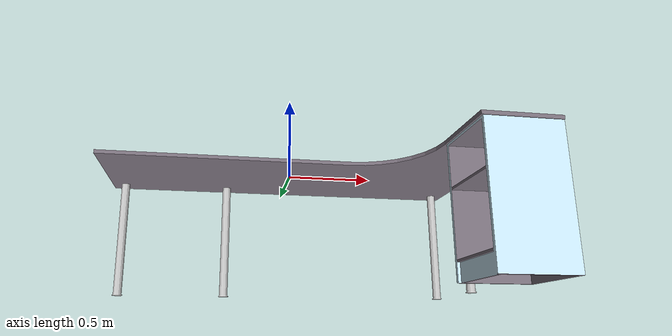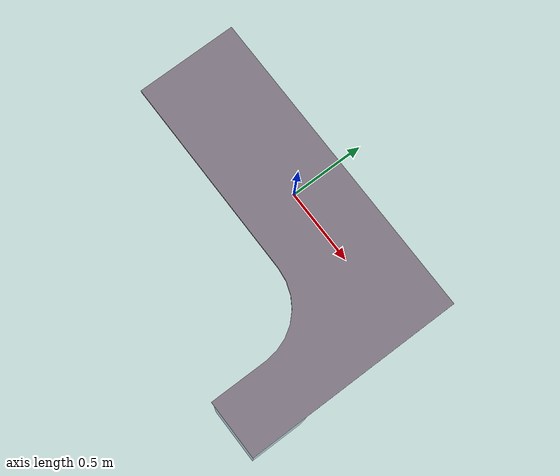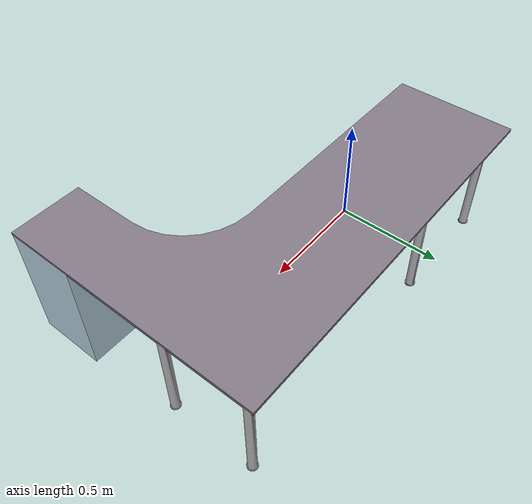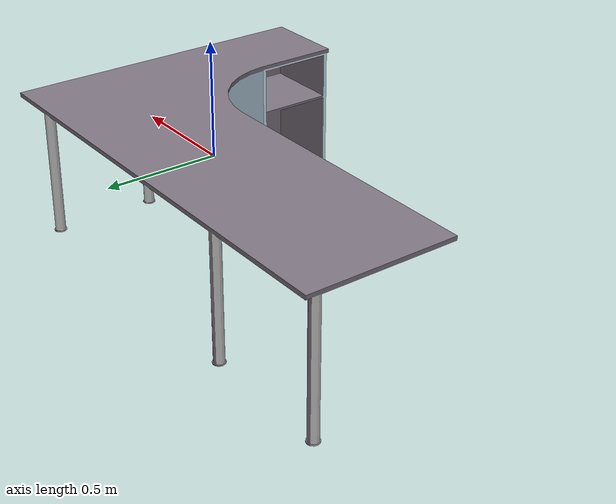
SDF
<?xml version='1.0'?>
<sdf version='1.6'>
  <model name='Desk_1_FR'>
    <link name='Desk_1_FR'>
      <pose frame=''>0 0 0 0 -0 0</pose>
      <inertial>
        <pose frame=''>0.39531 -0.35406 -0.14663 0 -0 0</pose>
        <mass>61.693</mass>
        <inertia>
          <ixx>17.631</ixx>
          <ixy>12.655</ixy>
          <ixz>3.0172</ixz>
          <iyy>31.98</iyy>
          <iyz>2.8376</iyz>
          <izz>43.808</izz>
        </inertia>
      </inertial>
      <collision name='Desk_1_FR_collision'>
        <pose frame=''>0 0 0 1.5708 -0 0</pose>
        <geometry>
          <mesh>
            <scale>1 1 1</scale>
            <uri>model://Desk_1_FR/meshes/Desk_1_FR.dae</uri>
          </mesh>
        </geometry>
      </collision>
      <visual name='Desk_1_FR_visual'>
        <pose frame=''>0 0 0 1.5708 -0 0</pose>
        <geometry>
          <mesh>
            <scale>1 1 1</scale>
            <uri>model://Desk_1_FR/meshes/Desk_1_FR.dae</uri>
          </mesh>
        </geometry>
      </visual>
    </link>
  </model>
</sdf>
